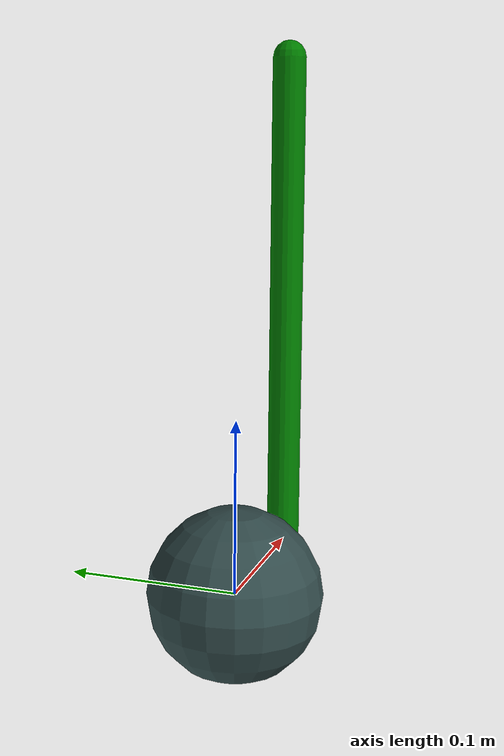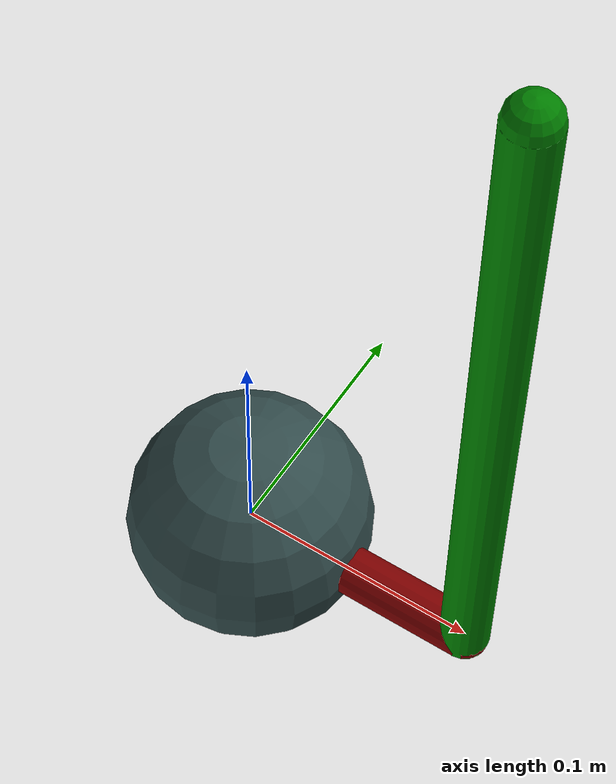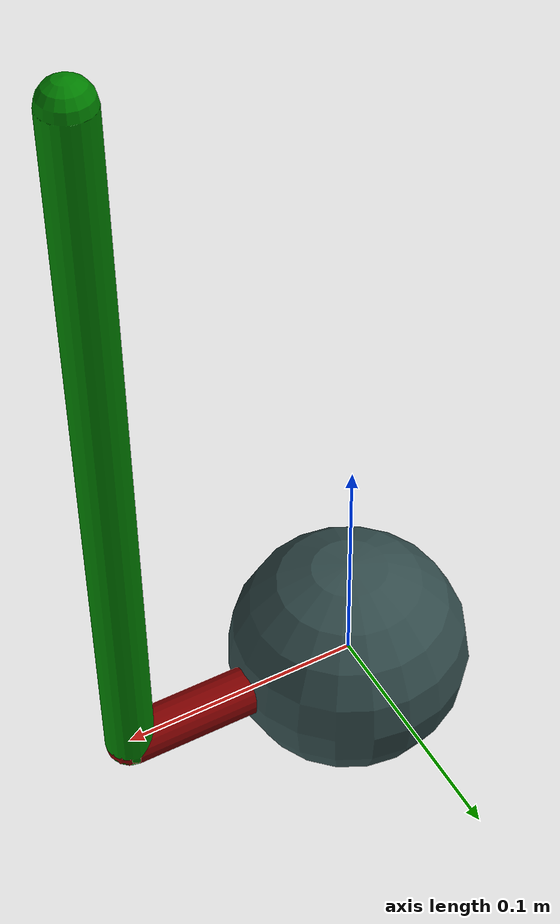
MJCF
<mujoco>
    <compiler angle="radian" coordinate="local" />
    <option timestep="0.002" gravity="0 0 -9.81"/>

    <worldbody>
        <body name="base" pos="0 0 0">
            <geom type="sphere" size="0.05" rgba="0.2 0.3 0.3 1"/>

            <body name="link1" pos="0 0 0">
                <joint name="joint1" type="hinge" axis="0 0 1"/>
                <geom type="capsule" fromto="0 0 0 0.1 0 0" size="0.01" rgba="0.5 0 0 1"/>

                <body name="pendulum" pos="0.1 0 0">
                    <joint name="encoder_joint" type="hinge" axis="1 0 0" damping="0.0005"/>
                    <geom type="capsule" fromto="0 0 0 0 0 0.3" size="0.01" rgba="0 0.5 0 1"/>
                </body>
            </body>
        </body>
    </worldbody>

    <actuator>
        <motor name="dc_motor" joint="joint1" gear="1"/>
    </actuator>
    <sensor>
        <jointpos joint="encoder_joint"/>
    </sensor>
</mujoco>
